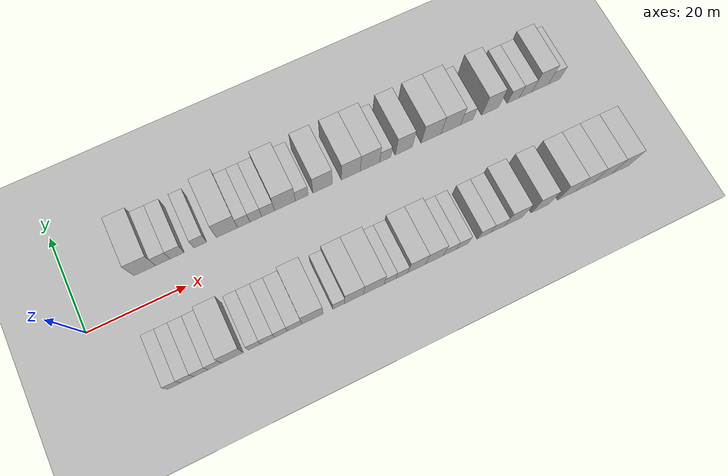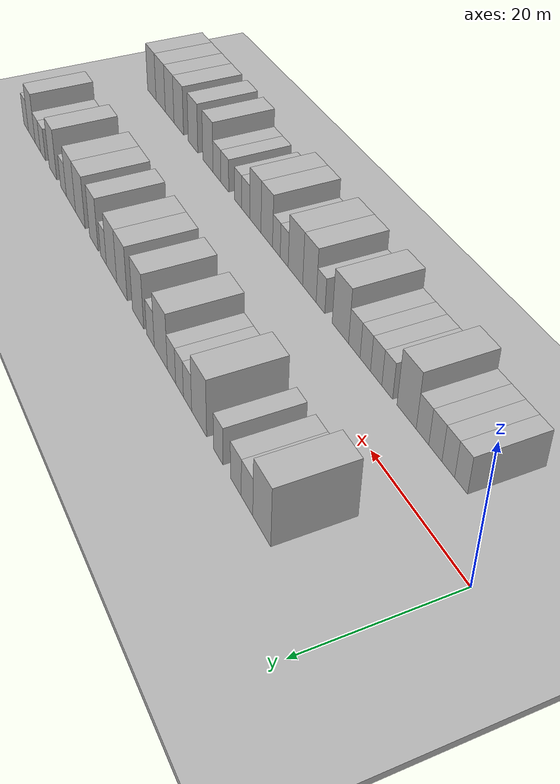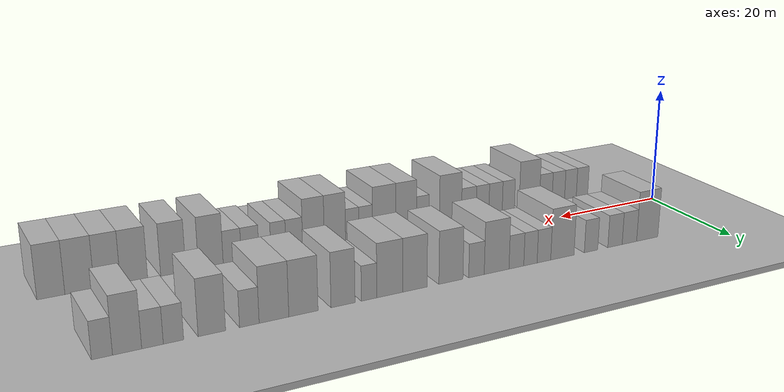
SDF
<sdf version="1.6">
 <world name="default">
  <include><name>ground_plane_1</name><uri>model://HANNAS_ground_plane</uri></include>
  <include>
   <name>ground_plane_2</name>
   <uri>model://HANNAS_ground_plane</uri>
   <pose>100 0 0  0 0 0</pose>
  </include>
  <model name="building_1">
   <static>1</static>
   <pose>14.1916 11.0000 0 0.000000 0.000000 1.570796</pose>
   <link name="link">
    <pose>0 0 4.50 0 0 0</pose>
    <collision name="collision"><geometry><box><size>10.0000 4.3833 9.0000</size></box></geometry></collision>
    <visual name="visual">
     <cast_shadows>0</cast_shadows>
     <geometry><box><size>10.0000 4.3833 9.0000</size></box></geometry>
     <material>
      <script>
       <uri>model://HANNAS_wall/materials/scripts</uri>
       <uri>model://HANNAS_wall/materials/textures</uri>
       <name>vrc/HANNAS_wall</name>
      </script>
     </material>
    </visual>
   </link>
  </model>
  <model name="building_2">
   <static>1</static>
   <pose>17.8584 11.0000 0 0.000000 0.000000 1.570796</pose>
   <link name="link">
    <pose>0 0 3.00 0 0 0</pose>
    <collision name="collision"><geometry><box><size>10.0000 2.9503 6.0000</size></box></geometry></collision>
    <visual name="visual">
     <cast_shadows>0</cast_shadows>
     <geometry><box><size>10.0000 2.9503 6.0000</size></box></geometry>
     <material>
      <script>
       <uri>model://HANNAS_wall/materials/scripts</uri>
       <uri>model://HANNAS_wall/materials/textures</uri>
       <name>vrc/HANNAS_wall</name>
      </script>
     </material>
    </visual>
   </link>
  </model>
  <model name="building_3">
   <static>1</static>
   <pose>20.7681 11.0000 0 0.000000 0.000000 1.570796</pose>
   <link name="link">
    <pose>0 0 3.00 0 0 0</pose>
    <collision name="collision"><geometry><box><size>10.0000 2.8691 6.0000</size></box></geometry></collision>
    <visual name="visual">
     <cast_shadows>0</cast_shadows>
     <geometry><box><size>10.0000 2.8691 6.0000</size></box></geometry>
     <material>
      <script>
       <uri>model://HANNAS_wall/materials/scripts</uri>
       <uri>model://HANNAS_wall/materials/textures</uri>
       <name>vrc/HANNAS_wall</name>
      </script>
     </material>
    </visual>
   </link>
  </model>
  <model name="building_4">
   <static>1</static>
   <pose>25.5156 11.0000 0 0.000000 0.000000 1.570796</pose>
   <link name="link">
    <pose>0 0 3.00 0 0 0</pose>
    <collision name="collision"><geometry><box><size>10.0000 2.6258 6.0000</size></box></geometry></collision>
    <visual name="visual">
     <cast_shadows>0</cast_shadows>
     <geometry><box><size>10.0000 2.6258 6.0000</size></box></geometry>
     <material>
      <script>
       <uri>model://HANNAS_wall/materials/scripts</uri>
       <uri>model://HANNAS_wall/materials/textures</uri>
       <name>vrc/HANNAS_wall</name>
      </script>
     </material>
    </visual>
   </link>
  </model>
  <model name="building_5">
   <static>1</static>
   <pose>31.0541 11.0000 0 0.000000 0.000000 1.570796</pose>
   <link name="link">
    <pose>0 0 4.50 0 0 0</pose>
    <collision name="collision"><geometry><box><size>10.0000 4.4512 9.0000</size></box></geometry></collision>
    <visual name="visual">
     <cast_shadows>0</cast_shadows>
     <geometry><box><size>10.0000 4.4512 9.0000</size></box></geometry>
     <material>
      <script>
       <uri>model://HANNAS_wall/materials/scripts</uri>
       <uri>model://HANNAS_wall/materials/textures</uri>
       <name>vrc/HANNAS_wall</name>
      </script>
     </material>
    </visual>
   </link>
  </model>
  <model name="building_6">
   <static>1</static>
   <pose>34.5564 11.0000 0 0.000000 0.000000 1.570796</pose>
   <link name="link">
    <pose>0 0 3.00 0 0 0</pose>
    <collision name="collision"><geometry><box><size>10.0000 2.5535 6.0000</size></box></geometry></collision>
    <visual name="visual">
     <cast_shadows>0</cast_shadows>
     <geometry><box><size>10.0000 2.5535 6.0000</size></box></geometry>
     <material>
      <script>
       <uri>model://HANNAS_wall/materials/scripts</uri>
       <uri>model://HANNAS_wall/materials/textures</uri>
       <name>vrc/HANNAS_wall</name>
      </script>
     </material>
    </visual>
   </link>
  </model>
  <model name="building_7">
   <static>1</static>
   <pose>37.0680 11.0000 0 0.000000 0.000000 1.570796</pose>
   <link name="link">
    <pose>0 0 3.00 0 0 0</pose>
    <collision name="collision"><geometry><box><size>10.0000 2.4696 6.0000</size></box></geometry></collision>
    <visual name="visual">
     <cast_shadows>0</cast_shadows>
     <geometry><box><size>10.0000 2.4696 6.0000</size></box></geometry>
     <material>
      <script>
       <uri>model://HANNAS_wall/materials/scripts</uri>
       <uri>model://HANNAS_wall/materials/textures</uri>
       <name>vrc/HANNAS_wall</name>
      </script>
     </material>
    </visual>
   </link>
  </model>
  <model name="building_8">
   <static>1</static>
   <pose>39.6554 11.0000 0 0.000000 0.000000 1.570796</pose>
   <link name="link">
    <pose>0 0 3.00 0 0 0</pose>
    <collision name="collision"><geometry><box><size>10.0000 2.7051 6.0000</size></box></geometry></collision>
    <visual name="visual">
     <cast_shadows>0</cast_shadows>
     <geometry><box><size>10.0000 2.7051 6.0000</size></box></geometry>
     <material>
      <script>
       <uri>model://HANNAS_wall/materials/scripts</uri>
       <uri>model://HANNAS_wall/materials/textures</uri>
       <name>vrc/HANNAS_wall</name>
      </script>
     </material>
    </visual>
   </link>
  </model>
  <model name="building_9">
   <static>1</static>
   <pose>43.2333 11.0000 0 0.000000 0.000000 1.570796</pose>
   <link name="link">
    <pose>0 0 4.50 0 0 0</pose>
    <collision name="collision"><geometry><box><size>10.0000 4.4507 9.0000</size></box></geometry></collision>
    <visual name="visual">
     <cast_shadows>0</cast_shadows>
     <geometry><box><size>10.0000 4.4507 9.0000</size></box></geometry>
     <material>
      <script>
       <uri>model://HANNAS_wall/materials/scripts</uri>
       <uri>model://HANNAS_wall/materials/textures</uri>
       <name>vrc/HANNAS_wall</name>
      </script>
     </material>
    </visual>
   </link>
  </model>
  <model name="building_10">
   <static>1</static>
   <pose>46.8315 11.0000 0 0.000000 0.000000 1.570796</pose>
   <link name="link">
    <pose>0 0 3.00 0 0 0</pose>
    <collision name="collision"><geometry><box><size>10.0000 2.7459 6.0000</size></box></geometry></collision>
    <visual name="visual">
     <cast_shadows>0</cast_shadows>
     <geometry><box><size>10.0000 2.7459 6.0000</size></box></geometry>
     <material>
      <script>
       <uri>model://HANNAS_wall/materials/scripts</uri>
       <uri>model://HANNAS_wall/materials/textures</uri>
       <name>vrc/HANNAS_wall</name>
      </script>
     </material>
    </visual>
   </link>
  </model>
  <model name="building_11">
   <static>1</static>
   <pose>51.2808 11.0000 0 0.000000 0.000000 1.570796</pose>
   <link name="link">
    <pose>0 0 4.50 0 0 0</pose>
    <collision name="collision"><geometry><box><size>10.0000 4.1526 9.0000</size></box></geometry></collision>
    <visual name="visual">
     <cast_shadows>0</cast_shadows>
     <geometry><box><size>10.0000 4.1526 9.0000</size></box></geometry>
     <material>
      <script>
       <uri>model://HANNAS_wall/materials/scripts</uri>
       <uri>model://HANNAS_wall/materials/textures</uri>
       <name>vrc/HANNAS_wall</name>
      </script>
     </material>
    </visual>
   </link>
  </model>
  <model name="building_12">
   <static>1</static>
   <pose>57.4109 11.0000 0 0.000000 0.000000 1.570796</pose>
   <link name="link">
    <pose>0 0 4.50 0 0 0</pose>
    <collision name="collision"><geometry><box><size>10.0000 4.1077 9.0000</size></box></geometry></collision>
    <visual name="visual">
     <cast_shadows>0</cast_shadows>
     <geometry><box><size>10.0000 4.1077 9.0000</size></box></geometry>
     <material>
      <script>
       <uri>model://HANNAS_wall/materials/scripts</uri>
       <uri>model://HANNAS_wall/materials/textures</uri>
       <name>vrc/HANNAS_wall</name>
      </script>
     </material>
    </visual>
   </link>
  </model>
  <model name="building_13">
   <static>1</static>
   <pose>61.5724 11.0000 0 0.000000 0.000000 1.570796</pose>
   <link name="link">
    <pose>0 0 4.50 0 0 0</pose>
    <collision name="collision"><geometry><box><size>10.0000 4.2152 9.0000</size></box></geometry></collision>
    <visual name="visual">
     <cast_shadows>0</cast_shadows>
     <geometry><box><size>10.0000 4.2152 9.0000</size></box></geometry>
     <material>
      <script>
       <uri>model://HANNAS_wall/materials/scripts</uri>
       <uri>model://HANNAS_wall/materials/textures</uri>
       <name>vrc/HANNAS_wall</name>
      </script>
     </material>
    </visual>
   </link>
  </model>
  <model name="building_14">
   <static>1</static>
   <pose>64.9226 11.0000 0 0.000000 0.000000 1.570796</pose>
   <link name="link">
    <pose>0 0 3.00 0 0 0</pose>
    <collision name="collision"><geometry><box><size>10.0000 2.4853 6.0000</size></box></geometry></collision>
    <visual name="visual">
     <cast_shadows>0</cast_shadows>
     <geometry><box><size>10.0000 2.4853 6.0000</size></box></geometry>
     <material>
      <script>
       <uri>model://HANNAS_wall/materials/scripts</uri>
       <uri>model://HANNAS_wall/materials/textures</uri>
       <name>vrc/HANNAS_wall</name>
      </script>
     </material>
    </visual>
   </link>
  </model>
  <model name="building_15">
   <static>1</static>
   <pose>69.0574 11.0000 0 0.000000 0.000000 1.570796</pose>
   <link name="link">
    <pose>0 0 4.50 0 0 0</pose>
    <collision name="collision"><geometry><box><size>10.0000 3.7844 9.0000</size></box></geometry></collision>
    <visual name="visual">
     <cast_shadows>0</cast_shadows>
     <geometry><box><size>10.0000 3.7844 9.0000</size></box></geometry>
     <material>
      <script>
       <uri>model://HANNAS_wall/materials/scripts</uri>
       <uri>model://HANNAS_wall/materials/textures</uri>
       <name>vrc/HANNAS_wall</name>
      </script>
     </material>
    </visual>
   </link>
  </model>
  <model name="building_16">
   <static>1</static>
   <pose>75.1733 11.0000 0 0.000000 0.000000 1.570796</pose>
   <link name="link">
    <pose>0 0 4.50 0 0 0</pose>
    <collision name="collision"><geometry><box><size>10.0000 4.4473 9.0000</size></box></geometry></collision>
    <visual name="visual">
     <cast_shadows>0</cast_shadows>
     <geometry><box><size>10.0000 4.4473 9.0000</size></box></geometry>
     <material>
      <script>
       <uri>model://HANNAS_wall/materials/scripts</uri>
       <uri>model://HANNAS_wall/materials/textures</uri>
       <name>vrc/HANNAS_wall</name>
      </script>
     </material>
    </visual>
   </link>
  </model>
  <model name="building_17">
   <static>1</static>
   <pose>79.6025 11.0000 0 0.000000 0.000000 1.570796</pose>
   <link name="link">
    <pose>0 0 4.50 0 0 0</pose>
    <collision name="collision"><geometry><box><size>10.0000 4.4111 9.0000</size></box></geometry></collision>
    <visual name="visual">
     <cast_shadows>0</cast_shadows>
     <geometry><box><size>10.0000 4.4111 9.0000</size></box></geometry>
     <material>
      <script>
       <uri>model://HANNAS_wall/materials/scripts</uri>
       <uri>model://HANNAS_wall/materials/textures</uri>
       <name>vrc/HANNAS_wall</name>
      </script>
     </material>
    </visual>
   </link>
  </model>
  <model name="building_18">
   <static>1</static>
   <pose>83.2336 11.0000 0 0.000000 0.000000 1.570796</pose>
   <link name="link">
    <pose>0 0 3.00 0 0 0</pose>
    <collision name="collision"><geometry><box><size>10.0000 2.8511 6.0000</size></box></geometry></collision>
    <visual name="visual">
     <cast_shadows>0</cast_shadows>
     <geometry><box><size>10.0000 2.8511 6.0000</size></box></geometry>
     <material>
      <script>
       <uri>model://HANNAS_wall/materials/scripts</uri>
       <uri>model://HANNAS_wall/materials/textures</uri>
       <name>vrc/HANNAS_wall</name>
      </script>
     </material>
    </visual>
   </link>
  </model>
  <model name="building_19">
   <static>1</static>
   <pose>88.6047 11.0000 0 0.000000 0.000000 1.570796</pose>
   <link name="link">
    <pose>0 0 4.50 0 0 0</pose>
    <collision name="collision"><geometry><box><size>10.0000 3.8911 9.0000</size></box></geometry></collision>
    <visual name="visual">
     <cast_shadows>0</cast_shadows>
     <geometry><box><size>10.0000 3.8911 9.0000</size></box></geometry>
     <material>
      <script>
       <uri>model://HANNAS_wall/materials/scripts</uri>
       <uri>model://HANNAS_wall/materials/textures</uri>
       <name>vrc/HANNAS_wall</name>
      </script>
     </material>
    </visual>
   </link>
  </model>
  <model name="building_20">
   <static>1</static>
   <pose>93.9447 11.0000 0 0.000000 0.000000 1.570796</pose>
   <link name="link">
    <pose>0 0 3.00 0 0 0</pose>
    <collision name="collision"><geometry><box><size>10.0000 2.7890 6.0000</size></box></geometry></collision>
    <visual name="visual">
     <cast_shadows>0</cast_shadows>
     <geometry><box><size>10.0000 2.7890 6.0000</size></box></geometry>
     <material>
      <script>
       <uri>model://HANNAS_wall/materials/scripts</uri>
       <uri>model://HANNAS_wall/materials/textures</uri>
       <name>vrc/HANNAS_wall</name>
      </script>
     </material>
    </visual>
   </link>
  </model>
  <model name="building_21">
   <static>1</static>
   <pose>96.7968 11.0000 0 0.000000 0.000000 1.570796</pose>
   <link name="link">
    <pose>0 0 3.00 0 0 0</pose>
    <collision name="collision"><geometry><box><size>10.0000 2.9152 6.0000</size></box></geometry></collision>
    <visual name="visual">
     <cast_shadows>0</cast_shadows>
     <geometry><box><size>10.0000 2.9152 6.0000</size></box></geometry>
     <material>
      <script>
       <uri>model://HANNAS_wall/materials/scripts</uri>
       <uri>model://HANNAS_wall/materials/textures</uri>
       <name>vrc/HANNAS_wall</name>
      </script>
     </material>
    </visual>
   </link>
  </model>
  <model name="building_22">
   <static>1</static>
   <pose>100.1815 11.0000 0 0.000000 0.000000 1.570796</pose>
   <link name="link">
    <pose>0 0 4.50 0 0 0</pose>
    <collision name="collision"><geometry><box><size>10.0000 3.8543 9.0000</size></box></geometry></collision>
    <visual name="visual">
     <cast_shadows>0</cast_shadows>
     <geometry><box><size>10.0000 3.8543 9.0000</size></box></geometry>
     <material>
      <script>
       <uri>model://HANNAS_wall/materials/scripts</uri>
       <uri>model://HANNAS_wall/materials/textures</uri>
       <name>vrc/HANNAS_wall</name>
      </script>
     </material>
    </visual>
   </link>
  </model>
  <model name="building_23">
   <static>1</static>
   <pose>103.4784 11.0000 0 0.000000 0.000000 1.570796</pose>
   <link name="link">
    <pose>0 0 3.00 0 0 0</pose>
    <collision name="collision"><geometry><box><size>10.0000 2.7394 6.0000</size></box></geometry></collision>
    <visual name="visual">
     <cast_shadows>0</cast_shadows>
     <geometry><box><size>10.0000 2.7394 6.0000</size></box></geometry>
     <material>
      <script>
       <uri>model://HANNAS_wall/materials/scripts</uri>
       <uri>model://HANNAS_wall/materials/textures</uri>
       <name>vrc/HANNAS_wall</name>
      </script>
     </material>
    </visual>
   </link>
  </model>
  <model name="building_49">
   <static>1</static>
   <pose>11.2677 -11.0000 0 0.000000 0.000000 1.570796</pose>
   <link name="link">
    <pose>0 0 3.00 0 0 0</pose>
    <collision name="collision"><geometry><box><size>10.0000 2.5354 6.0000</size></box></geometry></collision>
    <visual name="visual">
     <cast_shadows>0</cast_shadows>
     <geometry><box><size>10.0000 2.5354 6.0000</size></box></geometry>
     <material>
      <script>
       <uri>model://HANNAS_wall/materials/scripts</uri>
       <uri>model://HANNAS_wall/materials/textures</uri>
       <name>vrc/HANNAS_wall</name>
      </script>
     </material>
    </visual>
   </link>
  </model>
  <model name="building_50">
   <static>1</static>
   <pose>13.8170 -11.0000 0 0.000000 0.000000 1.570796</pose>
   <link name="link">
    <pose>0 0 3.00 0 0 0</pose>
    <collision name="collision"><geometry><box><size>10.0000 2.5633 6.0000</size></box></geometry></collision>
    <visual name="visual">
     <cast_shadows>0</cast_shadows>
     <geometry><box><size>10.0000 2.5633 6.0000</size></box></geometry>
     <material>
      <script>
       <uri>model://HANNAS_wall/materials/scripts</uri>
       <uri>model://HANNAS_wall/materials/textures</uri>
       <name>vrc/HANNAS_wall</name>
      </script>
     </material>
    </visual>
   </link>
  </model>
  <model name="building_51">
   <static>1</static>
   <pose>16.4609 -11.0000 0 0.000000 0.000000 1.570796</pose>
   <link name="link">
    <pose>0 0 3.00 0 0 0</pose>
    <collision name="collision"><geometry><box><size>10.0000 2.7245 6.0000</size></box></geometry></collision>
    <visual name="visual">
     <cast_shadows>0</cast_shadows>
     <geometry><box><size>10.0000 2.7245 6.0000</size></box></geometry>
     <material>
      <script>
       <uri>model://HANNAS_wall/materials/scripts</uri>
       <uri>model://HANNAS_wall/materials/textures</uri>
       <name>vrc/HANNAS_wall</name>
      </script>
     </material>
    </visual>
   </link>
  </model>
  <model name="building_52">
   <static>1</static>
   <pose>19.1688 -11.0000 0 0.000000 0.000000 1.570796</pose>
   <link name="link">
    <pose>0 0 3.00 0 0 0</pose>
    <collision name="collision"><geometry><box><size>10.0000 2.6912 6.0000</size></box></geometry></collision>
    <visual name="visual">
     <cast_shadows>0</cast_shadows>
     <geometry><box><size>10.0000 2.6912 6.0000</size></box></geometry>
     <material>
      <script>
       <uri>model://HANNAS_wall/materials/scripts</uri>
       <uri>model://HANNAS_wall/materials/textures</uri>
       <name>vrc/HANNAS_wall</name>
      </script>
     </material>
    </visual>
   </link>
  </model>
  <model name="building_53">
   <static>1</static>
   <pose>22.6573 -11.0000 0 0.000000 0.000000 1.570796</pose>
   <link name="link">
    <pose>0 0 4.50 0 0 0</pose>
    <collision name="collision"><geometry><box><size>10.0000 4.2858 9.0000</size></box></geometry></collision>
    <visual name="visual">
     <cast_shadows>0</cast_shadows>
     <geometry><box><size>10.0000 4.2858 9.0000</size></box></geometry>
     <material>
      <script>
       <uri>model://HANNAS_wall/materials/scripts</uri>
       <uri>model://HANNAS_wall/materials/textures</uri>
       <name>vrc/HANNAS_wall</name>
      </script>
     </material>
    </visual>
   </link>
  </model>
  <model name="building_54">
   <static>1</static>
   <pose>27.0591 -11.0000 0 0.000000 0.000000 1.570796</pose>
   <link name="link">
    <pose>0 0 3.00 0 0 0</pose>
    <collision name="collision"><geometry><box><size>10.0000 2.5179 6.0000</size></box></geometry></collision>
    <visual name="visual">
     <cast_shadows>0</cast_shadows>
     <geometry><box><size>10.0000 2.5179 6.0000</size></box></geometry>
     <material>
      <script>
       <uri>model://HANNAS_wall/materials/scripts</uri>
       <uri>model://HANNAS_wall/materials/textures</uri>
       <name>vrc/HANNAS_wall</name>
      </script>
     </material>
    </visual>
   </link>
  </model>
  <model name="building_55">
   <static>1</static>
   <pose>29.6842 -11.0000 0 0.000000 0.000000 1.570796</pose>
   <link name="link">
    <pose>0 0 3.00 0 0 0</pose>
    <collision name="collision"><geometry><box><size>10.0000 2.7322 6.0000</size></box></geometry></collision>
    <visual name="visual">
     <cast_shadows>0</cast_shadows>
     <geometry><box><size>10.0000 2.7322 6.0000</size></box></geometry>
     <material>
      <script>
       <uri>model://HANNAS_wall/materials/scripts</uri>
       <uri>model://HANNAS_wall/materials/textures</uri>
       <name>vrc/HANNAS_wall</name>
      </script>
     </material>
    </visual>
   </link>
  </model>
  <model name="building_56">
   <static>1</static>
   <pose>32.3419 -11.0000 0 0.000000 0.000000 1.570796</pose>
   <link name="link">
    <pose>0 0 3.00 0 0 0</pose>
    <collision name="collision"><geometry><box><size>10.0000 2.5832 6.0000</size></box></geometry></collision>
    <visual name="visual">
     <cast_shadows>0</cast_shadows>
     <geometry><box><size>10.0000 2.5832 6.0000</size></box></geometry>
     <material>
      <script>
       <uri>model://HANNAS_wall/materials/scripts</uri>
       <uri>model://HANNAS_wall/materials/textures</uri>
       <name>vrc/HANNAS_wall</name>
      </script>
     </material>
    </visual>
   </link>
  </model>
  <model name="building_57">
   <static>1</static>
   <pose>35.0956 -11.0000 0 0.000000 0.000000 1.570796</pose>
   <link name="link">
    <pose>0 0 3.00 0 0 0</pose>
    <collision name="collision"><geometry><box><size>10.0000 2.9242 6.0000</size></box></geometry></collision>
    <visual name="visual">
     <cast_shadows>0</cast_shadows>
     <geometry><box><size>10.0000 2.9242 6.0000</size></box></geometry>
     <material>
      <script>
       <uri>model://HANNAS_wall/materials/scripts</uri>
       <uri>model://HANNAS_wall/materials/textures</uri>
       <name>vrc/HANNAS_wall</name>
      </script>
     </material>
    </visual>
   </link>
  </model>
  <model name="building_58">
   <static>1</static>
   <pose>38.7261 -11.0000 0 0.000000 0.000000 1.570796</pose>
   <link name="link">
    <pose>0 0 4.50 0 0 0</pose>
    <collision name="collision"><geometry><box><size>10.0000 4.3369 9.0000</size></box></geometry></collision>
    <visual name="visual">
     <cast_shadows>0</cast_shadows>
     <geometry><box><size>10.0000 4.3369 9.0000</size></box></geometry>
     <material>
      <script>
       <uri>model://HANNAS_wall/materials/scripts</uri>
       <uri>model://HANNAS_wall/materials/textures</uri>
       <name>vrc/HANNAS_wall</name>
      </script>
     </material>
    </visual>
   </link>
  </model>
  <model name="building_59">
   <static>1</static>
   <pose>44.1078 -11.0000 0 0.000000 0.000000 1.570796</pose>
   <link name="link">
    <pose>0 0 3.00 0 0 0</pose>
    <collision name="collision"><geometry><box><size>10.0000 2.4265 6.0000</size></box></geometry></collision>
    <visual name="visual">
     <cast_shadows>0</cast_shadows>
     <geometry><box><size>10.0000 2.4265 6.0000</size></box></geometry>
     <material>
      <script>
       <uri>model://HANNAS_wall/materials/scripts</uri>
       <uri>model://HANNAS_wall/materials/textures</uri>
       <name>vrc/HANNAS_wall</name>
      </script>
     </material>
    </visual>
   </link>
  </model>
  <model name="building_60">
   <static>1</static>
   <pose>47.2637 -11.0000 0 0.000000 0.000000 1.570796</pose>
   <link name="link">
    <pose>0 0 4.50 0 0 0</pose>
    <collision name="collision"><geometry><box><size>10.0000 3.8852 9.0000</size></box></geometry></collision>
    <visual name="visual">
     <cast_shadows>0</cast_shadows>
     <geometry><box><size>10.0000 3.8852 9.0000</size></box></geometry>
     <material>
      <script>
       <uri>model://HANNAS_wall/materials/scripts</uri>
       <uri>model://HANNAS_wall/materials/textures</uri>
       <name>vrc/HANNAS_wall</name>
      </script>
     </material>
    </visual>
   </link>
  </model>
  <model name="building_61">
   <static>1</static>
   <pose>51.3766 -11.0000 0 0.000000 0.000000 1.570796</pose>
   <link name="link">
    <pose>0 0 4.50 0 0 0</pose>
    <collision name="collision"><geometry><box><size>10.0000 4.3407 9.0000</size></box></geometry></collision>
    <visual name="visual">
     <cast_shadows>0</cast_shadows>
     <geometry><box><size>10.0000 4.3407 9.0000</size></box></geometry>
     <material>
      <script>
       <uri>model://HANNAS_wall/materials/scripts</uri>
       <uri>model://HANNAS_wall/materials/textures</uri>
       <name>vrc/HANNAS_wall</name>
      </script>
     </material>
    </visual>
   </link>
  </model>
  <model name="building_62">
   <static>1</static>
   <pose>54.7813 -11.0000 0 0.000000 0.000000 1.570796</pose>
   <link name="link">
    <pose>0 0 3.00 0 0 0</pose>
    <collision name="collision"><geometry><box><size>10.0000 2.4687 6.0000</size></box></geometry></collision>
    <visual name="visual">
     <cast_shadows>0</cast_shadows>
     <geometry><box><size>10.0000 2.4687 6.0000</size></box></geometry>
     <material>
      <script>
       <uri>model://HANNAS_wall/materials/scripts</uri>
       <uri>model://HANNAS_wall/materials/textures</uri>
       <name>vrc/HANNAS_wall</name>
      </script>
     </material>
    </visual>
   </link>
  </model>
  <model name="building_63">
   <static>1</static>
   <pose>57.2316 -11.0000 0 0.000000 0.000000 1.570796</pose>
   <link name="link">
    <pose>0 0 3.00 0 0 0</pose>
    <collision name="collision"><geometry><box><size>10.0000 2.4320 6.0000</size></box></geometry></collision>
    <visual name="visual">
     <cast_shadows>0</cast_shadows>
     <geometry><box><size>10.0000 2.4320 6.0000</size></box></geometry>
     <material>
      <script>
       <uri>model://HANNAS_wall/materials/scripts</uri>
       <uri>model://HANNAS_wall/materials/textures</uri>
       <name>vrc/HANNAS_wall</name>
      </script>
     </material>
    </visual>
   </link>
  </model>
  <model name="building_64">
   <static>1</static>
   <pose>60.3391 -11.0000 0 0.000000 0.000000 1.570796</pose>
   <link name="link">
    <pose>0 0 4.50 0 0 0</pose>
    <collision name="collision"><geometry><box><size>10.0000 3.7830 9.0000</size></box></geometry></collision>
    <visual name="visual">
     <cast_shadows>0</cast_shadows>
     <geometry><box><size>10.0000 3.7830 9.0000</size></box></geometry>
     <material>
      <script>
       <uri>model://HANNAS_wall/materials/scripts</uri>
       <uri>model://HANNAS_wall/materials/textures</uri>
       <name>vrc/HANNAS_wall</name>
      </script>
     </material>
    </visual>
   </link>
  </model>
  <model name="building_65">
   <static>1</static>
   <pose>64.1207 -11.0000 0 0.000000 0.000000 1.570796</pose>
   <link name="link">
    <pose>0 0 4.50 0 0 0</pose>
    <collision name="collision"><geometry><box><size>10.0000 3.7803 9.0000</size></box></geometry></collision>
    <visual name="visual">
     <cast_shadows>0</cast_shadows>
     <geometry><box><size>10.0000 3.7803 9.0000</size></box></geometry>
     <material>
      <script>
       <uri>model://HANNAS_wall/materials/scripts</uri>
       <uri>model://HANNAS_wall/materials/textures</uri>
       <name>vrc/HANNAS_wall</name>
      </script>
     </material>
    </visual>
   </link>
  </model>
  <model name="building_66">
   <static>1</static>
   <pose>67.4562 -11.0000 0 0.000000 0.000000 1.570796</pose>
   <link name="link">
    <pose>0 0 3.00 0 0 0</pose>
    <collision name="collision"><geometry><box><size>10.0000 2.8907 6.0000</size></box></geometry></collision>
    <visual name="visual">
     <cast_shadows>0</cast_shadows>
     <geometry><box><size>10.0000 2.8907 6.0000</size></box></geometry>
     <material>
      <script>
       <uri>model://HANNAS_wall/materials/scripts</uri>
       <uri>model://HANNAS_wall/materials/textures</uri>
       <name>vrc/HANNAS_wall</name>
      </script>
     </material>
    </visual>
   </link>
  </model>
  <model name="building_67">
   <static>1</static>
   <pose>70.1834 -11.0000 0 0.000000 0.000000 1.570796</pose>
   <link name="link">
    <pose>0 0 3.00 0 0 0</pose>
    <collision name="collision"><geometry><box><size>10.0000 2.5637 6.0000</size></box></geometry></collision>
    <visual name="visual">
     <cast_shadows>0</cast_shadows>
     <geometry><box><size>10.0000 2.5637 6.0000</size></box></geometry>
     <material>
      <script>
       <uri>model://HANNAS_wall/materials/scripts</uri>
       <uri>model://HANNAS_wall/materials/textures</uri>
       <name>vrc/HANNAS_wall</name>
      </script>
     </material>
    </visual>
   </link>
  </model>
  <model name="building_68">
   <static>1</static>
   <pose>74.9344 -11.0000 0 0.000000 0.000000 1.570796</pose>
   <link name="link">
    <pose>0 0 3.00 0 0 0</pose>
    <collision name="collision"><geometry><box><size>10.0000 2.9383 6.0000</size></box></geometry></collision>
    <visual name="visual">
     <cast_shadows>0</cast_shadows>
     <geometry><box><size>10.0000 2.9383 6.0000</size></box></geometry>
     <material>
      <script>
       <uri>model://HANNAS_wall/materials/scripts</uri>
       <uri>model://HANNAS_wall/materials/textures</uri>
       <name>vrc/HANNAS_wall</name>
      </script>
     </material>
    </visual>
   </link>
  </model>
  <model name="building_69">
   <static>1</static>
   <pose>77.8871 -11.0000 0 0.000000 0.000000 1.570796</pose>
   <link name="link">
    <pose>0 0 3.00 0 0 0</pose>
    <collision name="collision"><geometry><box><size>10.0000 2.9670 6.0000</size></box></geometry></collision>
    <visual name="visual">
     <cast_shadows>0</cast_shadows>
     <geometry><box><size>10.0000 2.9670 6.0000</size></box></geometry>
     <material>
      <script>
       <uri>model://HANNAS_wall/materials/scripts</uri>
       <uri>model://HANNAS_wall/materials/textures</uri>
       <name>vrc/HANNAS_wall</name>
      </script>
     </material>
    </visual>
   </link>
  </model>
  <model name="building_70">
   <static>1</static>
   <pose>81.3668 -11.0000 0 0.000000 0.000000 1.570796</pose>
   <link name="link">
    <pose>0 0 4.50 0 0 0</pose>
    <collision name="collision"><geometry><box><size>10.0000 3.9924 9.0000</size></box></geometry></collision>
    <visual name="visual">
     <cast_shadows>0</cast_shadows>
     <geometry><box><size>10.0000 3.9924 9.0000</size></box></geometry>
     <material>
      <script>
       <uri>model://HANNAS_wall/materials/scripts</uri>
       <uri>model://HANNAS_wall/materials/textures</uri>
       <name>vrc/HANNAS_wall</name>
      </script>
     </material>
    </visual>
   </link>
  </model>
  <model name="building_71">
   <static>1</static>
   <pose>87.3257 -11.0000 0 0.000000 0.000000 1.570796</pose>
   <link name="link">
    <pose>0 0 4.50 0 0 0</pose>
    <collision name="collision"><geometry><box><size>10.0000 3.9255 9.0000</size></box></geometry></collision>
    <visual name="visual">
     <cast_shadows>0</cast_shadows>
     <geometry><box><size>10.0000 3.9255 9.0000</size></box></geometry>
     <material>
      <script>
       <uri>model://HANNAS_wall/materials/scripts</uri>
       <uri>model://HANNAS_wall/materials/textures</uri>
       <name>vrc/HANNAS_wall</name>
      </script>
     </material>
    </visual>
   </link>
  </model>
  <model name="building_72">
   <static>1</static>
   <pose>93.3514 -11.0000 0 0.000000 0.000000 1.570796</pose>
   <link name="link">
    <pose>0 0 4.50 0 0 0</pose>
    <collision name="collision"><geometry><box><size>10.0000 4.1259 9.0000</size></box></geometry></collision>
    <visual name="visual">
     <cast_shadows>0</cast_shadows>
     <geometry><box><size>10.0000 4.1259 9.0000</size></box></geometry>
     <material>
      <script>
       <uri>model://HANNAS_wall/materials/scripts</uri>
       <uri>model://HANNAS_wall/materials/textures</uri>
       <name>vrc/HANNAS_wall</name>
      </script>
     </material>
    </visual>
   </link>
  </model>
  <model name="building_73">
   <static>1</static>
   <pose>97.3604 -11.0000 0 0.000000 0.000000 1.570796</pose>
   <link name="link">
    <pose>0 0 4.50 0 0 0</pose>
    <collision name="collision"><geometry><box><size>10.0000 3.8922 9.0000</size></box></geometry></collision>
    <visual name="visual">
     <cast_shadows>0</cast_shadows>
     <geometry><box><size>10.0000 3.8922 9.0000</size></box></geometry>
     <material>
      <script>
       <uri>model://HANNAS_wall/materials/scripts</uri>
       <uri>model://HANNAS_wall/materials/textures</uri>
       <name>vrc/HANNAS_wall</name>
      </script>
     </material>
    </visual>
   </link>
  </model>
  <model name="building_74">
   <static>1</static>
   <pose>101.4374 -11.0000 0 0.000000 0.000000 1.570796</pose>
   <link name="link">
    <pose>0 0 4.50 0 0 0</pose>
    <collision name="collision"><geometry><box><size>10.0000 4.2617 9.0000</size></box></geometry></collision>
    <visual name="visual">
     <cast_shadows>0</cast_shadows>
     <geometry><box><size>10.0000 4.2617 9.0000</size></box></geometry>
     <material>
      <script>
       <uri>model://HANNAS_wall/materials/scripts</uri>
       <uri>model://HANNAS_wall/materials/textures</uri>
       <name>vrc/HANNAS_wall</name>
      </script>
     </material>
    </visual>
   </link>
  </model>
  <model name="building_75">
   <static>1</static>
   <pose>105.5662 -11.0000 0 0.000000 0.000000 1.570796</pose>
   <link name="link">
    <pose>0 0 4.50 0 0 0</pose>
    <collision name="collision"><geometry><box><size>10.0000 3.9959 9.0000</size></box></geometry></collision>
    <visual name="visual">
     <cast_shadows>0</cast_shadows>
     <geometry><box><size>10.0000 3.9959 9.0000</size></box></geometry>
     <material>
      <script>
       <uri>model://HANNAS_wall/materials/scripts</uri>
       <uri>model://HANNAS_wall/materials/textures</uri>
       <name>vrc/HANNAS_wall</name>
      </script>
     </material>
    </visual>
   </link>
  </model>
 </world>
</sdf>
